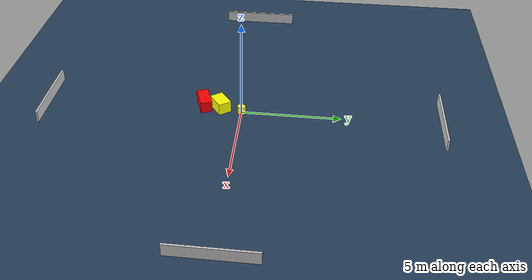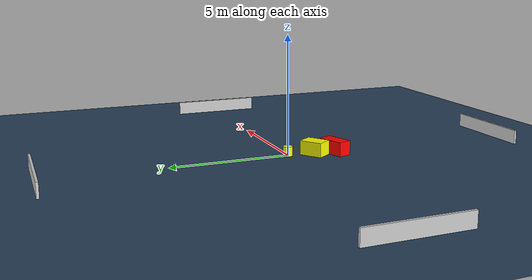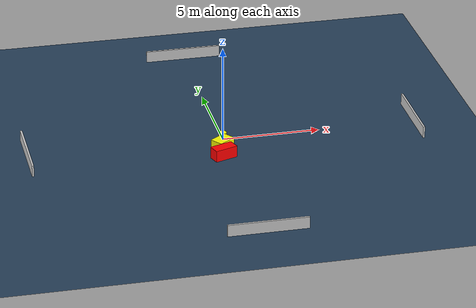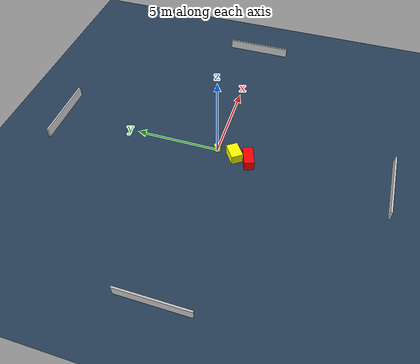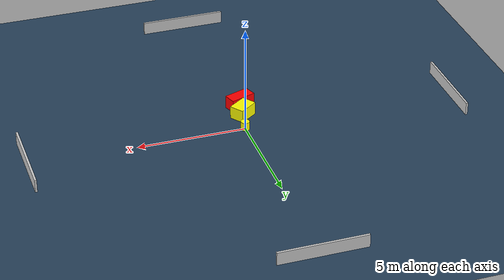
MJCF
<?xml version="1.0" ?>
<mujoco model="generated_environment">
  <option timestep="0.01" integrator="RK4" cone="elliptic"/>
  <default>
    <geom density="1"/>
  </default>
  <asset>
    <texture builtin="gradient" height="3072" name="skybox" rgb1="0.3 0.5 0.7" rgb2="0 0 0" type="skybox" width="512"/>
    <texture builtin="checker" height="300" name="groundplane" rgb1="0.2 0.3 0.4" rgb2="0.1 0.2 0.3" type="2d" width="300"/>
    <material name="groundplane" reflectance="0.2" texrepeat="5 5" texture="groundplane"/>
  </asset>
  <worldbody>
    <light dir="0 0 -1" directional="true" pos="0 0 1.5"/>
    <geom condim="3" friction="0.5 0.005 0.001" material="groundplane" name="floor" pos="0 0 0" size="0 0 0.05" type="plane"/>
    <body name="walls">
      <geom name="wall_1" condim="4" pos="-10.0 0.0 0.3" rgba="0.800000011920929 0.800000011920929 0.800000011920929 1.0" size="0.05 2.0 0.3" type="box"/>
      <geom name="wall_2" condim="4" pos="10.0 0.0 0.3" rgba="0.800000011920929 0.800000011920929 0.800000011920929 1.0" size="0.05 2.0 0.3" type="box"/>
      <geom name="wall_3" condim="4" pos="0.0 -10.0 0.3" rgba="0.800000011920929 0.800000011920929 0.800000011920929 1.0" size="2.0 0.05 0.3" type="box"/>
      <geom name="wall_4" condim="4" pos="0.0 10.0 0.3" rgba="0.800000011920929 0.800000011920929 0.800000011920929 1.0" size="2.0 0.05 0.3" type="box"/>
    </body>
    <body name="robot">
      <joint name="joint_x" type="slide" pos="0 0 0" axis="1 0 0"/>
      <joint name="joint_y" type="slide" pos="0 0 0" axis="0 1 0"/>
      <geom name="robot" type="cylinder" pos="0.0 0.0 0.2" size="0.2 0.2 0.0" mass="5.0" friction="1.0 0.005 0.0001" condim="4" rgba="1.0 1.0 0.0 1.0"/>
    </body>
    <body name="obstacle_1_movable">
      <geom name="obstacle_1_movable" condim="4" pos="-0.2512807610727013 -1.1000954752461247 0.3" euler="0 0 305.4123120643417" friction="0.0 0.005 0.001" rgba="1.0 1.0 0.0 1.0" size="0.3466162309313127 0.49067897791165394 0.3" type="box" mass="0.1"/>
      <joint type="free"/>
    </body>
    <body name="obstacle_2_static">
      <geom name="obstacle_2_static" condim="4" pos="-0.3839086528084526 -1.9626405257533177 0.3" euler="0 0 289.30631938271523" friction="0.0 0.005 0.001" rgba="1.0 0.0 0.0 1.0" size="0.29369180205367057 0.6011932037784486 0.3" type="box"/>
    </body>
  </worldbody>
  <actuator>
    <motor name="actuator_x" joint="joint_x" gear="1" ctrlrange="-1 1"/>
    <motor name="actuator_y" joint="joint_y" gear="1" ctrlrange="-1 1"/>
  </actuator>
</mujoco>
